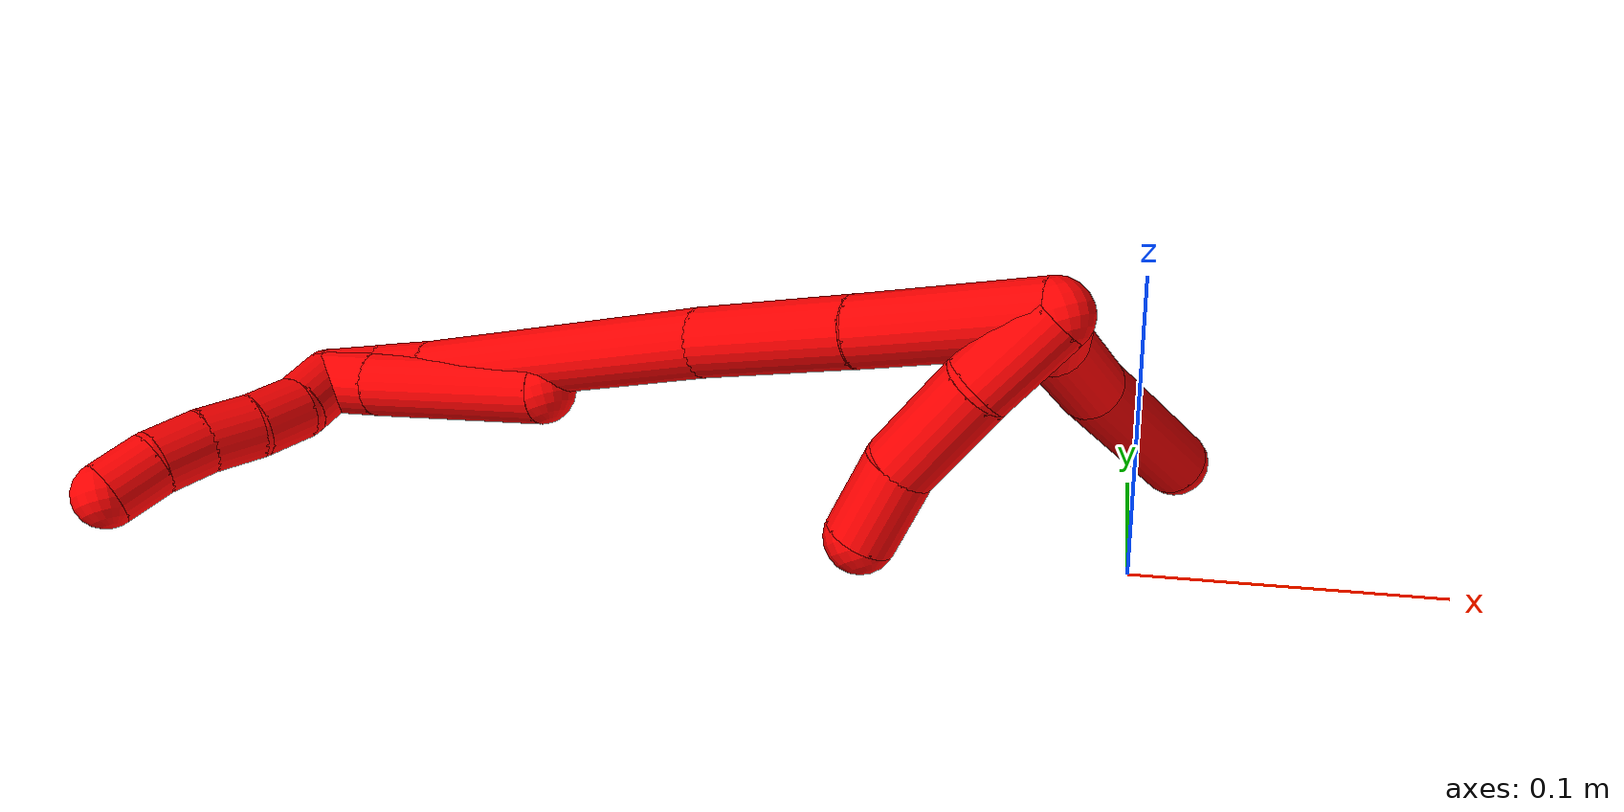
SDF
<sdf version="1.7">
 <world name="default">
  <model name="photoneo_s_sensor">
   <static>1</static>
   <pose>0 0 2 1.57079 1.57079 3.14159</pose>
   <link name="link">
    <inertial><mass>0.1</mass></inertial>
    <sensor name="sensor" type="depth">
     <update_rate>30</update_rate>
     <camera>
      <horizontal_fov>1.22</horizontal_fov>
      <image><width>1920</width><height>1200</height><format>B8G8R8</format></image>
      <clip><near>0.1</near><far>4</far></clip>
      <depth_camera><output>points</output></depth_camera>
     </camera>
     <plugin name="camera_plugin" filename="libgazebo_ros_depth_camera.so">
      <baseline>0.2</baseline>
      <alwaysOn>1</alwaysOn>
      <updateRate>0.0</updateRate>
      <cameraName>camera_ir</cameraName>
      <imageTopicName>/camera/color/image_raw</imageTopicName>
      <cameraInfoTopicName>/camera/color/camera_info</cameraInfoTopicName>
      <depthImageTopicName>/camera/depth/image_raw</depthImageTopicName>
      <depthImageCameraInfoTopicName>/camera/depth/camera_info</depthImageCameraInfoTopicName>
      <pointCloudTopicName>/camera/depth/points</pointCloudTopicName>
      <frameName>fr_optical</frameName>
      <pointCloudCutoff>0.1</pointCloudCutoff>
      <pointCloudCutoffMax>2.0</pointCloudCutoffMax>
      <distortionK1>0</distortionK1>
      <distortionK2>0</distortionK2>
      <distortionK3>0</distortionK3>
      <distortionT1>0</distortionT1>
      <distortionT2>0</distortionT2>
      <CxPrime>0</CxPrime>
      <Cx>0</Cx>
      <Cy>0</Cy>
      <focalLength>0</focalLength>
      <hackBaseline>0</hackBaseline>
     </plugin>
    </sensor>
   </link>
  </model>
  <model name="bin">
   <static>1</static>
   <link name="bottom">
    <collision name="collision-bottom">
     <pose>0 0 -0.01 0 -0 0</pose>
     <geometry><box><size>0.8 0.6 0.02</size></box></geometry>
     <surface>
      <friction><ode><mu>100</mu><mu2>100</mu2></ode></friction>
      <contact><collide_bitmask>65535</collide_bitmask></contact>
     </surface>
    </collision>
   </link>
   <link name="west_wall">
    <collision name="collision-west_wall">
     <pose>-0.41 0 0.1 0 -0 0</pose>
     <geometry><box><size>0.02 0.6 0.2</size></box></geometry>
     <surface>
      <friction><ode><mu>100</mu><mu2>100</mu2></ode></friction>
      <contact><collide_bitmask>65535</collide_bitmask></contact>
     </surface>
    </collision>
   </link>
   <link name="east_wall">
    <collision name="collision-east_wall">
     <pose>0.41 0 0.1 0 -0 0</pose>
     <geometry><box><size>0.02 0.6 0.2</size></box></geometry>
     <surface>
      <friction><ode><mu>100</mu><mu2>100</mu2></ode></friction>
      <contact><collide_bitmask>65535</collide_bitmask></contact>
     </surface>
    </collision>
   </link>
   <link name="south_wall">
    <collision name="collision-south_wall">
     <pose>0 -0.31 0.1 0 -0 0</pose>
     <geometry><box><size>0.8 0.02 0.2</size></box></geometry>
     <surface>
      <friction><ode><mu>100</mu><mu2>100</mu2></ode></friction>
      <contact><collide_bitmask>65535</collide_bitmask></contact>
     </surface>
    </collision>
   </link>
   <link name="north_wall">
    <collision name="collision-north_wall">
     <pose>0 0.31 0.1 0 -0 0</pose>
     <geometry><box><size>0.8 0.02 0.2</size></box></geometry>
     <surface>
      <friction><ode><mu>100</mu><mu2>100</mu2></ode></friction>
      <contact><collide_bitmask>65535</collide_bitmask></contact>
     </surface>
    </collision>
   </link>
  </model>
  <model name="2">
   <static>0</static>
   <link name="2">
    <collision name="collision-cylinder-e_1_2_8">
     <pose>-0.001711 0.016801 -0.001119 -1.6373 -0.101259 0.108215</pose>
     <geometry><cylinder><radius>0.0125</radius><length>0.033849</length></cylinder></geometry>
     <surface>
      <friction><ode><mu>1.16</mu><mu2>1.16</mu2><slip1>0</slip1><slip2>0</slip2></ode></friction>
      <contact><ode><kp>1e+06</kp><kd>1</kd><max_vel>0</max_vel><min_depth>0.001</min_depth></ode></contact>
     </surface>
    </collision>
    <visual name="visual-cylinder-e_1_2_8">
     <pose>-0.001711 0.016801 -0.001119 -1.6373 -0.101259 0.108215</pose>
     <geometry><cylinder><radius>0.0125</radius><length>0.033849</length></cylinder></geometry>
     <material><ambient>1 0 0 1</ambient></material>
    </visual>
    <collision name="collision-cylinder-e_2_8_9">
     <pose>0.000373 0.055863 -0.009032 -1.867 0.161606 -0.217894</pose>
     <geometry><cylinder><radius>0.0125</radius><length>0.047166</length></cylinder></geometry>
     <surface>
      <friction><ode><mu>1.16</mu><mu2>1.16</mu2><slip1>0</slip1><slip2>0</slip2></ode></friction>
      <contact><ode><kp>1e+06</kp><kd>1</kd><max_vel>0</max_vel><min_depth>0.001</min_depth></ode></contact>
     </surface>
    </collision>
    <visual name="visual-cylinder-e_2_8_9">
     <pose>0.000373 0.055863 -0.009032 -1.867 0.161606 -0.217894</pose>
     <geometry><cylinder><radius>0.0125</radius><length>0.047166</length></cylinder></geometry>
     <material><ambient>1 0 0 1</ambient></material>
    </visual>
    <collision name="collision-cylinder-e_3_9_6">
     <pose>0.014839 0.106983 -0.031417 -2.06616 0.314545 -0.519827</pose>
     <geometry><cylinder><radius>0.0125</radius><length>0.068985</length></cylinder></geometry>
     <surface>
      <friction><ode><mu>1.16</mu><mu2>1.16</mu2><slip1>0</slip1><slip2>0</slip2></ode></friction>
      <contact><ode><kp>1e+06</kp><kd>1</kd><max_vel>0</max_vel><min_depth>0.001</min_depth></ode></contact>
     </surface>
    </collision>
    <visual name="visual-cylinder-e_3_9_6">
     <pose>0.014839 0.106983 -0.031417 -2.06616 0.314545 -0.519827</pose>
     <geometry><cylinder><radius>0.0125</radius><length>0.068985</length></cylinder></geometry>
     <material><ambient>1 0 0 1</ambient></material>
    </visual>
    <collision name="collision-cylinder-e_1_2_10">
     <pose>-0.014817 0.002757 -0.006579 -2.74479 -1.1221 2.52231</pose>
     <geometry><cylinder><radius>0.0125</radius><length>0.032889</length></cylinder></geometry>
     <surface>
      <friction><ode><mu>1.16</mu><mu2>1.16</mu2><slip1>0</slip1><slip2>0</slip2></ode></friction>
      <contact><ode><kp>1e+06</kp><kd>1</kd><max_vel>0</max_vel><min_depth>0.001</min_depth></ode></contact>
     </surface>
    </collision>
    <visual name="visual-cylinder-e_1_2_10">
     <pose>-0.014817 0.002757 -0.006579 -2.74479 -1.1221 2.52231</pose>
     <geometry><cylinder><radius>0.0125</radius><length>0.032889</length></cylinder></geometry>
     <material><ambient>1 0 0 1</ambient></material>
    </visual>
    <collision name="collision-cylinder-e_2_10_11">
     <pose>-0.045696 0.012739 -0.020782 -2.38302 -0.991717 1.87153</pose>
     <geometry><cylinder><radius>0.0125</radius><length>0.038384</length></cylinder></geometry>
     <surface>
      <friction><ode><mu>1.16</mu><mu2>1.16</mu2><slip1>0</slip1><slip2>0</slip2></ode></friction>
      <contact><ode><kp>1e+06</kp><kd>1</kd><max_vel>0</max_vel><min_depth>0.001</min_depth></ode></contact>
     </surface>
    </collision>
    <visual name="visual-cylinder-e_2_10_11">
     <pose>-0.045696 0.012739 -0.020782 -2.38302 -0.991717 1.87153</pose>
     <geometry><cylinder><radius>0.0125</radius><length>0.038384</length></cylinder></geometry>
     <material><ambient>1 0 0 1</ambient></material>
    </visual>
    <collision name="collision-cylinder-e_3_11_5">
     <pose>-0.072056 0.024858 -0.037142 -2.63096 -0.799246 2.03449</pose>
     <geometry><cylinder><radius>0.0125</radius><length>0.028727</length></cylinder></geometry>
     <surface>
      <friction><ode><mu>1.16</mu><mu2>1.16</mu2><slip1>0</slip1><slip2>0</slip2></ode></friction>
      <contact><ode><kp>1e+06</kp><kd>1</kd><max_vel>0</max_vel><min_depth>0.001</min_depth></ode></contact>
     </surface>
    </collision>
    <visual name="visual-cylinder-e_3_11_5">
     <pose>-0.072056 0.024858 -0.037142 -2.63096 -0.799246 2.03449</pose>
     <geometry><cylinder><radius>0.0125</radius><length>0.028727</length></cylinder></geometry>
     <material><ambient>1 0 0 1</ambient></material>
    </visual>
    <collision name="collision-cylinder-e_1_2_12">
     <pose>-0.031455 0.00979 0.009144 -0.819484 -1.16817 0.559158</pose>
     <geometry><cylinder><radius>0.0125</radius><length>0.068378</length></cylinder></geometry>
     <surface>
      <friction><ode><mu>1.16</mu><mu2>1.16</mu2><slip1>0</slip1><slip2>0</slip2></ode></friction>
      <contact><ode><kp>1e+06</kp><kd>1</kd><max_vel>0</max_vel><min_depth>0.001</min_depth></ode></contact>
     </surface>
    </collision>
    <visual name="visual-cylinder-e_1_2_12">
     <pose>-0.031455 0.00979 0.009144 -0.819484 -1.16817 0.559158</pose>
     <geometry><cylinder><radius>0.0125</radius><length>0.068378</length></cylinder></geometry>
     <material><ambient>1 0 0 1</ambient></material>
    </visual>
    <collision name="collision-cylinder-e_2_12_13">
     <pose>-0.090366 0.030123 0.026856 -0.888386 -1.11132 0.574657</pose>
     <geometry><cylinder><radius>0.0125</radius><length>0.061265</length></cylinder></geometry>
     <surface>
      <friction><ode><mu>1.16</mu><mu2>1.16</mu2><slip1>0</slip1><slip2>0</slip2></ode></friction>
      <contact><ode><kp>1e+06</kp><kd>1</kd><max_vel>0</max_vel><min_depth>0.001</min_depth></ode></contact>
     </surface>
    </collision>
    <visual name="visual-cylinder-e_2_12_13">
     <pose>-0.090366 0.030123 0.026856 -0.888386 -1.11132 0.574657</pose>
     <geometry><cylinder><radius>0.0125</radius><length>0.061265</length></cylinder></geometry>
     <material><ambient>1 0 0 1</ambient></material>
    </visual>
    <collision name="collision-cylinder-e_3_13_14">
     <pose>-0.174452 0.058584 0.050235 -0.880042 -1.18125 0.61152</pose>
     <geometry><cylinder><radius>0.0125</radius><length>0.122434</length></cylinder></geometry>
     <surface>
      <friction><ode><mu>1.16</mu><mu2>1.16</mu2><slip1>0</slip1><slip2>0</slip2></ode></friction>
      <contact><ode><kp>1e+06</kp><kd>1</kd><max_vel>0</max_vel><min_depth>0.001</min_depth></ode></contact>
     </surface>
    </collision>
    <visual name="visual-cylinder-e_3_13_14">
     <pose>-0.174452 0.058584 0.050235 -0.880042 -1.18125 0.61152</pose>
     <geometry><cylinder><radius>0.0125</radius><length>0.122434</length></cylinder></geometry>
     <material><ambient>1 0 0 1</ambient></material>
    </visual>
    <collision name="collision-cylinder-e_4_14_15">
     <pose>-0.242576 0.079491 0.068411 -0.726363 -1.19766 0.507513</pose>
     <geometry><cylinder><radius>0.0125</radius><length>0.024686</length></cylinder></geometry>
     <surface>
      <friction><ode><mu>1.16</mu><mu2>1.16</mu2><slip1>0</slip1><slip2>0</slip2></ode></friction>
      <contact><ode><kp>1e+06</kp><kd>1</kd><max_vel>0</max_vel><min_depth>0.001</min_depth></ode></contact>
     </surface>
    </collision>
    <visual name="visual-cylinder-e_4_14_15">
     <pose>-0.242576 0.079491 0.068411 -0.726363 -1.19766 0.507513</pose>
     <geometry><cylinder><radius>0.0125</radius><length>0.024686</length></cylinder></geometry>
     <material><ambient>1 0 0 1</ambient></material>
    </visual>
    <collision name="collision-cylinder-e_5_15_1">
     <pose>-0.265363 0.082205 0.074493 0.100712 -1.33338 -0.079274</pose>
     <geometry><cylinder><radius>0.0125</radius><length>0.023237</length></cylinder></geometry>
     <surface>
      <friction><ode><mu>1.16</mu><mu2>1.16</mu2><slip1>0</slip1><slip2>0</slip2></ode></friction>
      <contact><ode><kp>1e+06</kp><kd>1</kd><max_vel>0</max_vel><min_depth>0.001</min_depth></ode></contact>
     </surface>
    </collision>
    <visual name="visual-cylinder-e_5_15_1">
     <pose>-0.265363 0.082205 0.074493 0.100712 -1.33338 -0.079274</pose>
     <geometry><cylinder><radius>0.0125</radius><length>0.023237</length></cylinder></geometry>
     <material><ambient>1 0 0 1</ambient></material>
    </visual>
    <collision name="collision-cylinder-e_1_1_16">
     <pose>-0.265924 0.079769 0.072874 2.67942 1.14655 2.44262</pose>
     <geometry><cylinder><radius>0.0125</radius><length>0.023551</length></cylinder></geometry>
     <surface>
      <friction><ode><mu>1.16</mu><mu2>1.16</mu2><slip1>0</slip1><slip2>0</slip2></ode></friction>
      <contact><ode><kp>1e+06</kp><kd>1</kd><max_vel>0</max_vel><min_depth>0.001</min_depth></ode></contact>
     </surface>
    </collision>
    <visual name="visual-cylinder-e_1_1_16">
     <pose>-0.265924 0.079769 0.072874 2.67942 1.14655 2.44262</pose>
     <geometry><cylinder><radius>0.0125</radius><length>0.023551</length></cylinder></geometry>
     <material><ambient>1 0 0 1</ambient></material>
    </visual>
    <collision name="collision-cylinder-e_2_16_4">
     <pose>-0.220373 0.069318 0.055118 2.5882 1.1455 2.31194</pose>
     <geometry><cylinder><radius>0.0125</radius><length>0.076449</length></cylinder></geometry>
     <surface>
      <friction><ode><mu>1.16</mu><mu2>1.16</mu2><slip1>0</slip1><slip2>0</slip2></ode></friction>
      <contact><ode><kp>1e+06</kp><kd>1</kd><max_vel>0</max_vel><min_depth>0.001</min_depth></ode></contact>
     </surface>
    </collision>
    <visual name="visual-cylinder-e_2_16_4">
     <pose>-0.220373 0.069318 0.055118 2.5882 1.1455 2.31194</pose>
     <geometry><cylinder><radius>0.0125</radius><length>0.076449</length></cylinder></geometry>
     <material><ambient>1 0 0 1</ambient></material>
    </visual>
    <collision name="collision-cylinder-e_1_1_17">
     <pose>-0.280726 0.074303 0.072186 2.15343 -0.419198 -0.75225</pose>
     <geometry><cylinder><radius>0.0125</radius><length>0.02</length></cylinder></geometry>
     <surface>
      <friction><ode><mu>1.16</mu><mu2>1.16</mu2><slip1>0</slip1><slip2>0</slip2></ode></friction>
      <contact><ode><kp>1e+06</kp><kd>1</kd><max_vel>0</max_vel><min_depth>0.001</min_depth></ode></contact>
     </surface>
    </collision>
    <visual name="visual-cylinder-e_1_1_17">
     <pose>-0.280726 0.074303 0.072186 2.15343 -0.419198 -0.75225</pose>
     <geometry><cylinder><radius>0.0125</radius><length>0.02</length></cylinder></geometry>
     <material><ambient>1 0 0 1</ambient></material>
    </visual>
    <collision name="collision-cylinder-e_2_17_18">
     <pose>-0.290772 0.059089 0.064566 1.90035 -0.640563 -0.868901</pose>
     <geometry><cylinder><radius>0.0125</radius><length>0.02</length></cylinder></geometry>
     <surface>
      <friction><ode><mu>1.16</mu><mu2>1.16</mu2><slip1>0</slip1><slip2>0</slip2></ode></friction>
      <contact><ode><kp>1e+06</kp><kd>1</kd><max_vel>0</max_vel><min_depth>0.001</min_depth></ode></contact>
     </surface>
    </collision>
    <visual name="visual-cylinder-e_2_17_18">
     <pose>-0.290772 0.059089 0.064566 1.90035 -0.640563 -0.868901</pose>
     <geometry><cylinder><radius>0.0125</radius><length>0.02</length></cylinder></geometry>
     <material><ambient>1 0 0 1</ambient></material>
    </visual>
    <collision name="collision-cylinder-e_3_18_19">
     <pose>-0.303745 0.044486 0.060629 1.75973 -0.774928 -0.916903</pose>
     <geometry><cylinder><radius>0.0125</radius><length>0.02</length></cylinder></geometry>
     <surface>
      <friction><ode><mu>1.16</mu><mu2>1.16</mu2><slip1>0</slip1><slip2>0</slip2></ode></friction>
      <contact><ode><kp>1e+06</kp><kd>1</kd><max_vel>0</max_vel><min_depth>0.001</min_depth></ode></contact>
     </surface>
    </collision>
    <visual name="visual-cylinder-e_3_18_19">
     <pose>-0.303745 0.044486 0.060629 1.75973 -0.774928 -0.916903</pose>
     <geometry><cylinder><radius>0.0125</radius><length>0.02</length></cylinder></geometry>
     <material><ambient>1 0 0 1</ambient></material>
    </visual>
    <collision name="collision-cylinder-e_4_19_20">
     <pose>-0.317193 0.030319 0.056589 1.93168 -0.701168 -0.972973</pose>
     <geometry><cylinder><radius>0.0125</radius><length>0.02</length></cylinder></geometry>
     <surface>
      <friction><ode><mu>1.16</mu><mu2>1.16</mu2><slip1>0</slip1><slip2>0</slip2></ode></friction>
      <contact><ode><kp>1e+06</kp><kd>1</kd><max_vel>0</max_vel><min_depth>0.001</min_depth></ode></contact>
     </surface>
    </collision>
    <visual name="visual-cylinder-e_4_19_20">
     <pose>-0.317193 0.030319 0.056589 1.93168 -0.701168 -0.972973</pose>
     <geometry><cylinder><radius>0.0125</radius><length>0.02</length></cylinder></geometry>
     <material><ambient>1 0 0 1</ambient></material>
    </visual>
    <collision name="collision-cylinder-e_5_20_3">
     <pose>-0.330635 0.0173 0.049809 2.17838 -0.774134 -1.32476</pose>
     <geometry><cylinder><radius>0.0125</radius><length>0.02</length></cylinder></geometry>
     <surface>
      <friction><ode><mu>1.16</mu><mu2>1.16</mu2><slip1>0</slip1><slip2>0</slip2></ode></friction>
      <contact><ode><kp>1e+06</kp><kd>1</kd><max_vel>0</max_vel><min_depth>0.001</min_depth></ode></contact>
     </surface>
    </collision>
    <visual name="visual-cylinder-e_5_20_3">
     <pose>-0.330635 0.0173 0.049809 2.17838 -0.774134 -1.32476</pose>
     <geometry><cylinder><radius>0.0125</radius><length>0.02</length></cylinder></geometry>
     <material><ambient>1 0 0 1</ambient></material>
    </visual>
    <collision name="collision-sphere-3">
     <pose>-0.337626 0.01143 0.045727 0 -0 0</pose>
     <geometry><sphere><radius>0.0125</radius></sphere></geometry>
     <surface>
      <friction><ode><mu>1.16</mu><mu2>1.16</mu2><slip1>0</slip1><slip2>0</slip2></ode></friction>
      <contact><ode><kp>1e+06</kp><kd>1</kd><max_vel>0</max_vel><min_depth>0.001</min_depth></ode></contact>
     </surface>
    </collision>
    <visual name="visual-sphere-3">
     <pose>-0.337626 0.01143 0.045727 0 -0 0</pose>
     <geometry><sphere><radius>0.0125</radius></sphere></geometry>
     <material><ambient>1 0 0 1</ambient></material>
    </visual>
    <collision name="collision-sphere-20">
     <pose>-0.323644 0.023171 0.053891 0 -0 0</pose>
     <geometry><sphere><radius>0.0125</radius></sphere></geometry>
     <surface>
      <friction><ode><mu>1.16</mu><mu2>1.16</mu2><slip1>0</slip1><slip2>0</slip2></ode></friction>
      <contact><ode><kp>1e+06</kp><kd>1</kd><max_vel>0</max_vel><min_depth>0.001</min_depth></ode></contact>
     </surface>
    </collision>
    <visual name="visual-sphere-20">
     <pose>-0.323644 0.023171 0.053891 0 -0 0</pose>
     <geometry><sphere><radius>0.0125</radius></sphere></geometry>
     <material><ambient>1 0 0 1</ambient></material>
    </visual>
    <collision name="collision-sphere-19">
     <pose>-0.310742 0.037468 0.059287 0 -0 0</pose>
     <geometry><sphere><radius>0.0125</radius></sphere></geometry>
     <surface>
      <friction><ode><mu>1.16</mu><mu2>1.16</mu2><slip1>0</slip1><slip2>0</slip2></ode></friction>
      <contact><ode><kp>1e+06</kp><kd>1</kd><max_vel>0</max_vel><min_depth>0.001</min_depth></ode></contact>
     </surface>
    </collision>
    <visual name="visual-sphere-19">
     <pose>-0.310742 0.037468 0.059287 0 -0 0</pose>
     <geometry><sphere><radius>0.0125</radius></sphere></geometry>
     <material><ambient>1 0 0 1</ambient></material>
    </visual>
    <collision name="collision-sphere-11">
     <pose>-0.061759 0.019963 -0.028405 0 -0 0</pose>
     <geometry><sphere><radius>0.0125</radius></sphere></geometry>
     <surface>
      <friction><ode><mu>1.16</mu><mu2>1.16</mu2><slip1>0</slip1><slip2>0</slip2></ode></friction>
      <contact><ode><kp>1e+06</kp><kd>1</kd><max_vel>0</max_vel><min_depth>0.001</min_depth></ode></contact>
     </surface>
    </collision>
    <visual name="visual-sphere-11">
     <pose>-0.061759 0.019963 -0.028405 0 -0 0</pose>
     <geometry><sphere><radius>0.0125</radius></sphere></geometry>
     <material><ambient>1 0 0 1</ambient></material>
    </visual>
    <collision name="collision-sphere-10">
     <pose>-0.029633 0.005514 -0.013159 0 -0 0</pose>
     <geometry><sphere><radius>0.0125</radius></sphere></geometry>
     <surface>
      <friction><ode><mu>1.16</mu><mu2>1.16</mu2><slip1>0</slip1><slip2>0</slip2></ode></friction>
      <contact><ode><kp>1e+06</kp><kd>1</kd><max_vel>0</max_vel><min_depth>0.001</min_depth></ode></contact>
     </surface>
    </collision>
    <visual name="visual-sphere-10">
     <pose>-0.029633 0.005514 -0.013159 0 -0 0</pose>
     <geometry><sphere><radius>0.0125</radius></sphere></geometry>
     <material><ambient>1 0 0 1</ambient></material>
    </visual>
    <collision name="collision-sphere-6">
     <pose>0.02551 0.13584 -0.047009 0 -0 0</pose>
     <geometry><sphere><radius>0.0125</radius></sphere></geometry>
     <surface>
      <friction><ode><mu>1.16</mu><mu2>1.16</mu2><slip1>0</slip1><slip2>0</slip2></ode></friction>
      <contact><ode><kp>1e+06</kp><kd>1</kd><max_vel>0</max_vel><min_depth>0.001</min_depth></ode></contact>
     </surface>
    </collision>
    <visual name="visual-sphere-6">
     <pose>0.02551 0.13584 -0.047009 0 -0 0</pose>
     <geometry><sphere><radius>0.0125</radius></sphere></geometry>
     <material><ambient>1 0 0 1</ambient></material>
    </visual>
    <collision name="collision-sphere-9">
     <pose>0.004167 0.078125 -0.015826 0 -0 0</pose>
     <geometry><sphere><radius>0.0125</radius></sphere></geometry>
     <surface>
      <friction><ode><mu>1.16</mu><mu2>1.16</mu2><slip1>0</slip1><slip2>0</slip2></ode></friction>
      <contact><ode><kp>1e+06</kp><kd>1</kd><max_vel>0</max_vel><min_depth>0.001</min_depth></ode></contact>
     </surface>
    </collision>
    <visual name="visual-sphere-9">
     <pose>0.004167 0.078125 -0.015826 0 -0 0</pose>
     <geometry><sphere><radius>0.0125</radius></sphere></geometry>
     <material><ambient>1 0 0 1</ambient></material>
    </visual>
    <collision name="collision-sphere-2">
     <geometry><sphere><radius>0.0125</radius></sphere></geometry>
     <surface>
      <friction><ode><mu>1.16</mu><mu2>1.16</mu2><slip1>0</slip1><slip2>0</slip2></ode></friction>
      <contact><ode><kp>1e+06</kp><kd>1</kd><max_vel>0</max_vel><min_depth>0.001</min_depth></ode></contact>
     </surface>
    </collision>
    <visual name="visual-sphere-2">
     <geometry><sphere><radius>0.0125</radius></sphere></geometry>
     <material><ambient>1 0 0 1</ambient></material>
    </visual>
    <collision name="collision-sphere-8">
     <pose>-0.003422 0.033601 -0.002238 0 -0 0</pose>
     <geometry><sphere><radius>0.0125</radius></sphere></geometry>
     <surface>
      <friction><ode><mu>1.16</mu><mu2>1.16</mu2><slip1>0</slip1><slip2>0</slip2></ode></friction>
      <contact><ode><kp>1e+06</kp><kd>1</kd><max_vel>0</max_vel><min_depth>0.001</min_depth></ode></contact>
     </surface>
    </collision>
    <visual name="visual-sphere-8">
     <pose>-0.003422 0.033601 -0.002238 0 -0 0</pose>
     <geometry><sphere><radius>0.0125</radius></sphere></geometry>
     <material><ambient>1 0 0 1</ambient></material>
    </visual>
    <collision name="collision-sphere-5">
     <pose>-0.082352 0.029753 -0.04588 0 -0 0</pose>
     <geometry><sphere><radius>0.0125</radius></sphere></geometry>
     <surface>
      <friction><ode><mu>1.16</mu><mu2>1.16</mu2><slip1>0</slip1><slip2>0</slip2></ode></friction>
      <contact><ode><kp>1e+06</kp><kd>1</kd><max_vel>0</max_vel><min_depth>0.001</min_depth></ode></contact>
     </surface>
    </collision>
    <visual name="visual-sphere-5">
     <pose>-0.082352 0.029753 -0.04588 0 -0 0</pose>
     <geometry><sphere><radius>0.0125</radius></sphere></geometry>
     <material><ambient>1 0 0 1</ambient></material>
    </visual>
    <collision name="collision-sphere-12">
     <pose>-0.06291 0.01958 0.018289 0 -0 0</pose>
     <geometry><sphere><radius>0.0125</radius></sphere></geometry>
     <surface>
      <friction><ode><mu>1.16</mu><mu2>1.16</mu2><slip1>0</slip1><slip2>0</slip2></ode></friction>
      <contact><ode><kp>1e+06</kp><kd>1</kd><max_vel>0</max_vel><min_depth>0.001</min_depth></ode></contact>
     </surface>
    </collision>
    <visual name="visual-sphere-12">
     <pose>-0.06291 0.01958 0.018289 0 -0 0</pose>
     <geometry><sphere><radius>0.0125</radius></sphere></geometry>
     <material><ambient>1 0 0 1</ambient></material>
    </visual>
    <collision name="collision-sphere-13">
     <pose>-0.117821 0.040665 0.035424 0 -0 0</pose>
     <geometry><sphere><radius>0.0125</radius></sphere></geometry>
     <surface>
      <friction><ode><mu>1.16</mu><mu2>1.16</mu2><slip1>0</slip1><slip2>0</slip2></ode></friction>
      <contact><ode><kp>1e+06</kp><kd>1</kd><max_vel>0</max_vel><min_depth>0.001</min_depth></ode></contact>
     </surface>
    </collision>
    <visual name="visual-sphere-13">
     <pose>-0.117821 0.040665 0.035424 0 -0 0</pose>
     <geometry><sphere><radius>0.0125</radius></sphere></geometry>
     <material><ambient>1 0 0 1</ambient></material>
    </visual>
    <collision name="collision-sphere-14">
     <pose>-0.231083 0.076503 0.065047 0 -0 0</pose>
     <geometry><sphere><radius>0.0125</radius></sphere></geometry>
     <surface>
      <friction><ode><mu>1.16</mu><mu2>1.16</mu2><slip1>0</slip1><slip2>0</slip2></ode></friction>
      <contact><ode><kp>1e+06</kp><kd>1</kd><max_vel>0</max_vel><min_depth>0.001</min_depth></ode></contact>
     </surface>
    </collision>
    <visual name="visual-sphere-14">
     <pose>-0.231083 0.076503 0.065047 0 -0 0</pose>
     <geometry><sphere><radius>0.0125</radius></sphere></geometry>
     <material><ambient>1 0 0 1</ambient></material>
    </visual>
    <collision name="collision-sphere-15">
     <pose>-0.25407 0.082479 0.071775 0 -0 0</pose>
     <geometry><sphere><radius>0.0125</radius></sphere></geometry>
     <surface>
      <friction><ode><mu>1.16</mu><mu2>1.16</mu2><slip1>0</slip1><slip2>0</slip2></ode></friction>
      <contact><ode><kp>1e+06</kp><kd>1</kd><max_vel>0</max_vel><min_depth>0.001</min_depth></ode></contact>
     </surface>
    </collision>
    <visual name="visual-sphere-15">
     <pose>-0.25407 0.082479 0.071775 0 -0 0</pose>
     <geometry><sphere><radius>0.0125</radius></sphere></geometry>
     <material><ambient>1 0 0 1</ambient></material>
    </visual>
    <collision name="collision-sphere-1">
     <pose>-0.276655 0.08193 0.077212 0 -0 0</pose>
     <geometry><sphere><radius>0.0125</radius></sphere></geometry>
     <surface>
      <friction><ode><mu>1.16</mu><mu2>1.16</mu2><slip1>0</slip1><slip2>0</slip2></ode></friction>
      <contact><ode><kp>1e+06</kp><kd>1</kd><max_vel>0</max_vel><min_depth>0.001</min_depth></ode></contact>
     </surface>
    </collision>
    <visual name="visual-sphere-1">
     <pose>-0.276655 0.08193 0.077212 0 -0 0</pose>
     <geometry><sphere><radius>0.0125</radius></sphere></geometry>
     <material><ambient>1 0 0 1</ambient></material>
    </visual>
    <collision name="collision-sphere-18">
     <pose>-0.296749 0.051503 0.061971 0 -0 0</pose>
     <geometry><sphere><radius>0.0125</radius></sphere></geometry>
     <surface>
      <friction><ode><mu>1.16</mu><mu2>1.16</mu2><slip1>0</slip1><slip2>0</slip2></ode></friction>
      <contact><ode><kp>1e+06</kp><kd>1</kd><max_vel>0</max_vel><min_depth>0.001</min_depth></ode></contact>
     </surface>
    </collision>
    <visual name="visual-sphere-18">
     <pose>-0.296749 0.051503 0.061971 0 -0 0</pose>
     <geometry><sphere><radius>0.0125</radius></sphere></geometry>
     <material><ambient>1 0 0 1</ambient></material>
    </visual>
    <collision name="collision-sphere-16">
     <pose>-0.255193 0.077607 0.068535 0 -0 0</pose>
     <geometry><sphere><radius>0.0125</radius></sphere></geometry>
     <surface>
      <friction><ode><mu>1.16</mu><mu2>1.16</mu2><slip1>0</slip1><slip2>0</slip2></ode></friction>
      <contact><ode><kp>1e+06</kp><kd>1</kd><max_vel>0</max_vel><min_depth>0.001</min_depth></ode></contact>
     </surface>
    </collision>
    <visual name="visual-sphere-16">
     <pose>-0.255193 0.077607 0.068535 0 -0 0</pose>
     <geometry><sphere><radius>0.0125</radius></sphere></geometry>
     <material><ambient>1 0 0 1</ambient></material>
    </visual>
    <collision name="collision-sphere-4">
     <pose>-0.185553 0.061029 0.041701 0 -0 0</pose>
     <geometry><sphere><radius>0.0125</radius></sphere></geometry>
     <surface>
      <friction><ode><mu>1.16</mu><mu2>1.16</mu2><slip1>0</slip1><slip2>0</slip2></ode></friction>
      <contact><ode><kp>1e+06</kp><kd>1</kd><max_vel>0</max_vel><min_depth>0.001</min_depth></ode></contact>
     </surface>
    </collision>
    <visual name="visual-sphere-4">
     <pose>-0.185553 0.061029 0.041701 0 -0 0</pose>
     <geometry><sphere><radius>0.0125</radius></sphere></geometry>
     <material><ambient>1 0 0 1</ambient></material>
    </visual>
    <collision name="collision-sphere-17">
     <pose>-0.284796 0.066676 0.06716 0 -0 0</pose>
     <geometry><sphere><radius>0.0125</radius></sphere></geometry>
     <surface>
      <friction><ode><mu>1.16</mu><mu2>1.16</mu2><slip1>0</slip1><slip2>0</slip2></ode></friction>
      <contact><ode><kp>1e+06</kp><kd>1</kd><max_vel>0</max_vel><min_depth>0.001</min_depth></ode></contact>
     </surface>
    </collision>
    <visual name="visual-sphere-17">
     <pose>-0.284796 0.066676 0.06716 0 -0 0</pose>
     <geometry><sphere><radius>0.0125</radius></sphere></geometry>
     <material><ambient>1 0 0 1</ambient></material>
    </visual>
    <inertial>
     <pose>-0.1308 0.049501 0.025512 0 -0 0</pose>
     <mass>0.75</mass>
     <inertia>
      <ixx>0.000116</ixx>
      <ixy>0</ixy>
      <ixz>0</ixz>
      <iyy>0.000295</iyy>
      <iyz>0</iyz>
      <izz>6.4e-05</izz>
     </inertia>
    </inertial>
   </link>
   <pose>-0.027292 -0.023353 0.091012 -0.370175 -0.349736 0.107004</pose>
  </model>
 </world>
</sdf>
